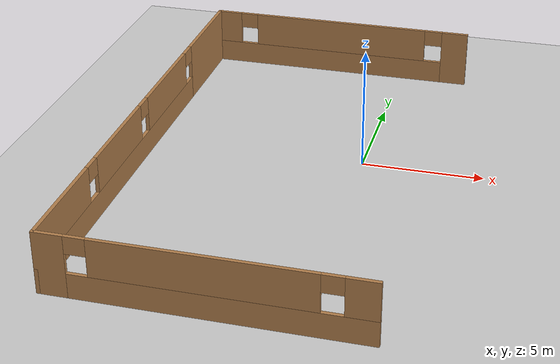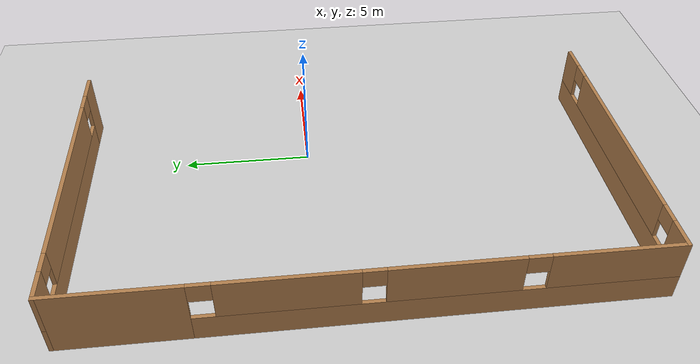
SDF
<sdf version="1.6">
 <world name="default">
  <model name="ground_plane">
   <static>1</static>
   <link name="link">
    <collision name="collision">
     <geometry><plane><normal>0 0 1</normal><size>100 100</size></plane></geometry>
     <surface>
      <contact><collide_bitmask>65535</collide_bitmask></contact>
      <friction><ode><mu>100</mu><mu2>50</mu2></ode></friction>
     </surface>
    </collision>
    <visual name="visual">
     <cast_shadows>0</cast_shadows>
     <geometry><plane><normal>0 0 1</normal><size>100 100</size></plane></geometry>
     <material>
      <script><uri>file://media/materials/scripts/gazebo.material</uri><name>Gazebo/Grey</name></script>
     </material>
    </visual>
   </link>
  </model>
  <model name="hospital_corridor_2">
   <pose>-2.97557 -1.50857 0 0 -0 0</pose>
   <link name="Wall_12">
    <pose>1e-06 10.425 0 0 -0 3.14159</pose>
    <visual name="Wall_12_Visual_0">
     <pose>-5.44242 0 1.25 0 -0 0</pose>
     <geometry><box><size>1.19015 0.15 2.5</size></box></geometry>
     <material>
      <script><uri>file://media/materials/scripts/gazebo.material</uri><name>Gazebo/Wood</name></script>
      <ambient>1 1 1 1</ambient>
     </material>
     <meta><layer>0</layer></meta>
    </visual>
    <collision name="Wall_12_Collision_0">
     <geometry><box><size>1.19015 0.15 2.5</size></box></geometry>
     <pose>-5.44242 0 1.25 0 -0 0</pose>
    </collision>
    <visual name="Wall_12_Visual_1">
     <pose>0.595076 0 0.5 0 -0 0</pose>
     <geometry><box><size>10.8848 0.15 1</size></box></geometry>
     <material>
      <script><uri>file://media/materials/scripts/gazebo.material</uri><name>Gazebo/Wood</name></script>
      <ambient>1 1 1 1</ambient>
     </material>
     <meta><layer>0</layer></meta>
    </visual>
    <collision name="Wall_12_Collision_1">
     <geometry><box><size>10.8848 0.15 1</size></box></geometry>
     <pose>0.595076 0 0.5 0 -0 0</pose>
    </collision>
    <visual name="Wall_12_Visual_2">
     <pose>0.005295 0 1.75 0 -0 0</pose>
     <geometry><box><size>8.10528 0.15 1.5</size></box></geometry>
     <material>
      <script><uri>file://media/materials/scripts/gazebo.material</uri><name>Gazebo/Wood</name></script>
      <ambient>1 1 1 1</ambient>
     </material>
     <meta><layer>0</layer></meta>
    </visual>
    <collision name="Wall_12_Collision_2">
     <geometry><box><size>8.10528 0.15 1.5</size></box></geometry>
     <pose>0.005295 0 1.75 0 -0 0</pose>
    </collision>
    <visual name="Wall_12_Visual_3">
     <pose>5.44772 0 1.75 0 -0 0</pose>
     <geometry><box><size>1.17956 0.15 1.5</size></box></geometry>
     <material>
      <script><uri>file://media/materials/scripts/gazebo.material</uri><name>Gazebo/Wood</name></script>
      <ambient>1 1 1 1</ambient>
     </material>
     <meta><layer>0</layer></meta>
    </visual>
    <collision name="Wall_12_Collision_3">
     <geometry><box><size>1.17956 0.15 1.5</size></box></geometry>
     <pose>5.44772 0 1.75 0 -0 0</pose>
    </collision>
    <visual name="Wall_12_Visual_4">
     <pose>-4.44735 0 2.15 0 -0 0</pose>
     <geometry><box><size>0.8 0.15 0.7</size></box></geometry>
     <material>
      <script><uri>file://media/materials/scripts/gazebo.material</uri><name>Gazebo/Wood</name></script>
      <ambient>1 1 1 1</ambient>
     </material>
     <meta><layer>0</layer></meta>
    </visual>
    <collision name="Wall_12_Collision_4">
     <geometry><box><size>0.8 0.15 0.7</size></box></geometry>
     <pose>-4.44735 0 2.15 0 -0 0</pose>
    </collision>
    <visual name="Wall_12_Visual_5">
     <pose>4.45794 0 2.15 0 -0 0</pose>
     <geometry><box><size>0.8 0.15 0.7</size></box></geometry>
     <material>
      <script><uri>file://media/materials/scripts/gazebo.material</uri><name>Gazebo/Wood</name></script>
      <ambient>1 1 1 1</ambient>
     </material>
     <meta><layer>0</layer></meta>
    </visual>
    <collision name="Wall_12_Collision_5">
     <geometry><box><size>0.8 0.15 0.7</size></box></geometry>
     <pose>4.45794 0 2.15 0 -0 0</pose>
    </collision>
   </link>
   <link name="Wall_13">
    <pose>-5.9625 0 0 0 -0 -1.5708</pose>
    <visual name="Wall_13_Visual_0">
     <pose>-8.17263 0 1.25 0 -0 0</pose>
     <geometry><box><size>4.65474 0.15 2.5</size></box></geometry>
     <material>
      <script><uri>file://media/materials/scripts/gazebo.material</uri><name>Gazebo/Wood</name></script>
      <ambient>1 1 1 1</ambient>
     </material>
     <meta><layer>0</layer></meta>
    </visual>
    <collision name="Wall_13_Collision_0">
     <geometry><box><size>4.65474 0.15 2.5</size></box></geometry>
     <pose>-8.17263 0 1.25 0 -0 0</pose>
    </collision>
    <visual name="Wall_13_Visual_1">
     <pose>2.32737 0 0.5 0 -0 0</pose>
     <geometry><box><size>16.3453 0.15 1</size></box></geometry>
     <material>
      <script><uri>file://media/materials/scripts/gazebo.material</uri><name>Gazebo/Wood</name></script>
      <ambient>1 1 1 1</ambient>
     </material>
     <meta><layer>0</layer></meta>
    </visual>
    <collision name="Wall_13_Collision_1">
     <geometry><box><size>16.3453 0.15 1</size></box></geometry>
     <pose>2.32737 0 0.5 0 -0 0</pose>
    </collision>
    <visual name="Wall_13_Visual_2">
     <pose>-2.68115 0 1.75 0 -0 0</pose>
     <geometry><box><size>4.72821 0.15 1.5</size></box></geometry>
     <material>
      <script><uri>file://media/materials/scripts/gazebo.material</uri><name>Gazebo/Wood</name></script>
      <ambient>1 1 1 1</ambient>
     </material>
     <meta><layer>0</layer></meta>
    </visual>
    <collision name="Wall_13_Collision_2">
     <geometry><box><size>4.72821 0.15 1.5</size></box></geometry>
     <pose>-2.68115 0 1.75 0 -0 0</pose>
    </collision>
    <visual name="Wall_13_Visual_3">
     <pose>2.76611 0 1.75 0 -0 0</pose>
     <geometry><box><size>4.5663 0.15 1.5</size></box></geometry>
     <material>
      <script><uri>file://media/materials/scripts/gazebo.material</uri><name>Gazebo/Wood</name></script>
      <ambient>1 1 1 1</ambient>
     </material>
     <meta><layer>0</layer></meta>
    </visual>
    <collision name="Wall_13_Collision_3">
     <geometry><box><size>4.5663 0.15 1.5</size></box></geometry>
     <pose>2.76611 0 1.75 0 -0 0</pose>
    </collision>
    <visual name="Wall_13_Visual_4">
     <pose>8.17463 0 1.75 0 -0 0</pose>
     <geometry><box><size>4.65074 0.15 1.5</size></box></geometry>
     <material>
      <script><uri>file://media/materials/scripts/gazebo.material</uri><name>Gazebo/Wood</name></script>
      <ambient>1 1 1 1</ambient>
     </material>
     <meta><layer>0</layer></meta>
    </visual>
    <collision name="Wall_13_Collision_4">
     <geometry><box><size>4.65074 0.15 1.5</size></box></geometry>
     <pose>8.17463 0 1.75 0 -0 0</pose>
    </collision>
    <visual name="Wall_13_Visual_5">
     <pose>-5.44526 0 2.15 0 -0 0</pose>
     <geometry><box><size>0.8 0.15 0.7</size></box></geometry>
     <material>
      <script><uri>file://media/materials/scripts/gazebo.material</uri><name>Gazebo/Wood</name></script>
      <ambient>1 1 1 1</ambient>
     </material>
     <meta><layer>0</layer></meta>
    </visual>
    <collision name="Wall_13_Collision_5">
     <geometry><box><size>0.8 0.15 0.7</size></box></geometry>
     <pose>-5.44526 0 2.15 0 -0 0</pose>
    </collision>
    <visual name="Wall_13_Visual_6">
     <pose>0.082958 0 2.15 0 -0 0</pose>
     <geometry><box><size>0.8 0.15 0.7</size></box></geometry>
     <material>
      <script><uri>file://media/materials/scripts/gazebo.material</uri><name>Gazebo/Wood</name></script>
      <ambient>1 1 1 1</ambient>
     </material>
     <meta><layer>0</layer></meta>
    </visual>
    <collision name="Wall_13_Collision_6">
     <geometry><box><size>0.8 0.15 0.7</size></box></geometry>
     <pose>0.082958 0 2.15 0 -0 0</pose>
    </collision>
    <visual name="Wall_13_Visual_7">
     <pose>5.44926 0 2.15 0 -0 0</pose>
     <geometry><box><size>0.8 0.15 0.7</size></box></geometry>
     <material>
      <script><uri>file://media/materials/scripts/gazebo.material</uri><name>Gazebo/Wood</name></script>
      <ambient>1 1 1 1</ambient>
     </material>
     <meta><layer>0</layer></meta>
    </visual>
    <collision name="Wall_13_Collision_7">
     <geometry><box><size>0.8 0.15 0.7</size></box></geometry>
     <pose>5.44926 0 2.15 0 -0 0</pose>
    </collision>
   </link>
   <link name="Wall_14">
    <pose>1e-06 -10.425 0 0 -0 0</pose>
    <visual name="Wall_14_Visual_0">
     <pose>-5.44772 0 1.25 0 -0 0</pose>
     <geometry><box><size>1.17956 0.15 2.5</size></box></geometry>
     <material>
      <script><uri>file://media/materials/scripts/gazebo.material</uri><name>Gazebo/Wood</name></script>
      <ambient>1 1 1 1</ambient>
     </material>
     <meta><layer>0</layer></meta>
    </visual>
    <collision name="Wall_14_Collision_0">
     <geometry><box><size>1.17956 0.15 2.5</size></box></geometry>
     <pose>-5.44772 0 1.25 0 -0 0</pose>
    </collision>
    <visual name="Wall_14_Visual_1">
     <pose>0.589782 0 0.5 0 -0 0</pose>
     <geometry><box><size>10.8954 0.15 1</size></box></geometry>
     <material>
      <script><uri>file://media/materials/scripts/gazebo.material</uri><name>Gazebo/Wood</name></script>
      <ambient>1 1 1 1</ambient>
     </material>
     <meta><layer>0</layer></meta>
    </visual>
    <collision name="Wall_14_Collision_1">
     <geometry><box><size>10.8954 0.15 1</size></box></geometry>
     <pose>0.589782 0 0.5 0 -0 0</pose>
    </collision>
    <visual name="Wall_14_Visual_2">
     <pose>-0.005295 0 1.75 0 -0 0</pose>
     <geometry><box><size>8.10528 0.15 1.5</size></box></geometry>
     <material>
      <script><uri>file://media/materials/scripts/gazebo.material</uri><name>Gazebo/Wood</name></script>
      <ambient>1 1 1 1</ambient>
     </material>
     <meta><layer>0</layer></meta>
    </visual>
    <collision name="Wall_14_Collision_2">
     <geometry><box><size>8.10528 0.15 1.5</size></box></geometry>
     <pose>-0.005295 0 1.75 0 -0 0</pose>
    </collision>
    <visual name="Wall_14_Visual_3">
     <pose>5.44242 0 1.75 0 -0 0</pose>
     <geometry><box><size>1.19015 0.15 1.5</size></box></geometry>
     <material>
      <script><uri>file://media/materials/scripts/gazebo.material</uri><name>Gazebo/Wood</name></script>
      <ambient>1 1 1 1</ambient>
     </material>
     <meta><layer>0</layer></meta>
    </visual>
    <collision name="Wall_14_Collision_3">
     <geometry><box><size>1.19015 0.15 1.5</size></box></geometry>
     <pose>5.44242 0 1.75 0 -0 0</pose>
    </collision>
    <visual name="Wall_14_Visual_4">
     <pose>-4.45794 0 2.15 0 -0 0</pose>
     <geometry><box><size>0.8 0.15 0.7</size></box></geometry>
     <material>
      <script><uri>file://media/materials/scripts/gazebo.material</uri><name>Gazebo/Wood</name></script>
      <ambient>1 1 1 1</ambient>
     </material>
     <meta><layer>0</layer></meta>
    </visual>
    <collision name="Wall_14_Collision_4">
     <geometry><box><size>0.8 0.15 0.7</size></box></geometry>
     <pose>-4.45794 0 2.15 0 -0 0</pose>
    </collision>
    <visual name="Wall_14_Visual_5">
     <pose>4.44735 0 2.15 0 -0 0</pose>
     <geometry><box><size>0.8 0.15 0.7</size></box></geometry>
     <material>
      <script><uri>file://media/materials/scripts/gazebo.material</uri><name>Gazebo/Wood</name></script>
      <ambient>1 1 1 1</ambient>
     </material>
     <meta><layer>0</layer></meta>
    </visual>
    <collision name="Wall_14_Collision_5">
     <geometry><box><size>0.8 0.15 0.7</size></box></geometry>
     <pose>4.44735 0 2.15 0 -0 0</pose>
    </collision>
   </link>
   <static>1</static>
  </model>
 </world>
</sdf>
